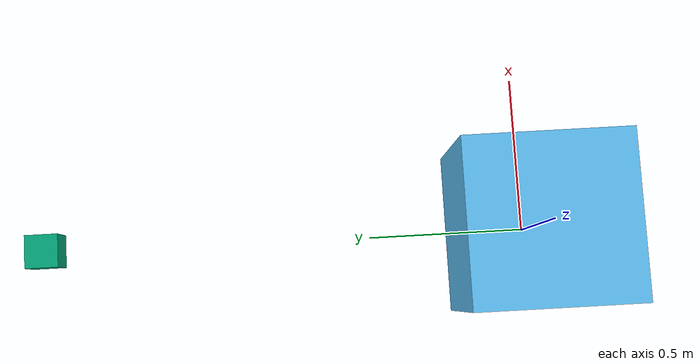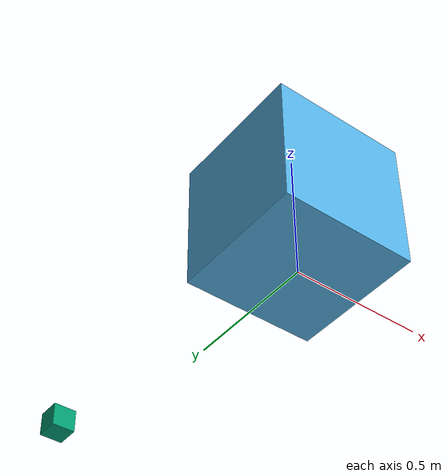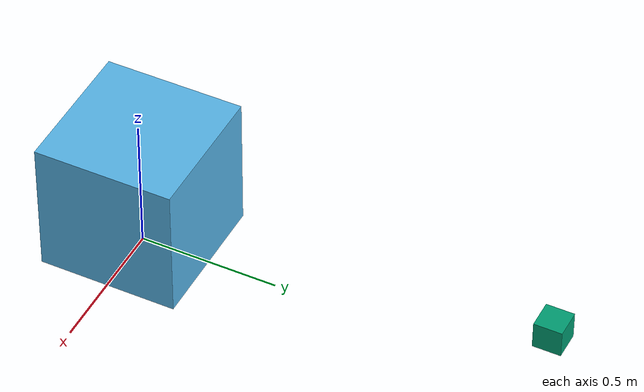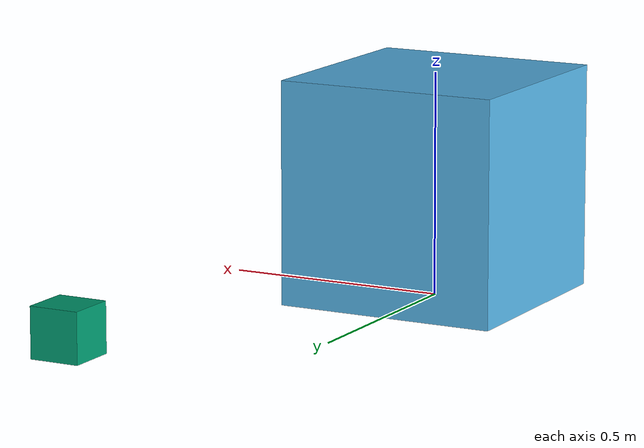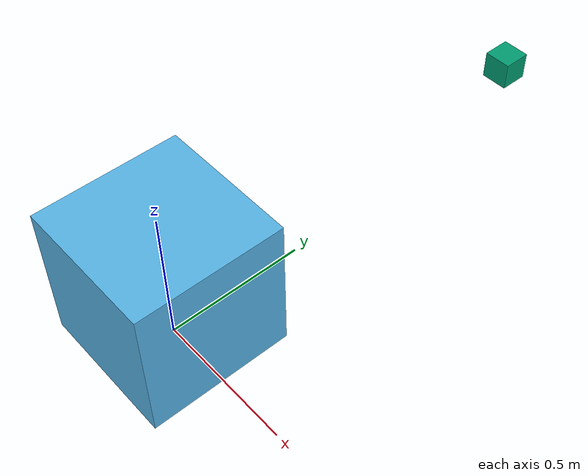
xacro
<?xml version="1.0"?>
<robot name="robotino" xmlns:xacro="http://www.ros.org/wiki/xacro">

  <xacro:property name="PI" value="3.1415926535897931"/>
  <xacro:property name="width" value="0.5" /> <!-- Square dimensions (widthxwidth) of beams -->
  <xacro:property name="height" value="0.5" /> <!-- Link 1 -->
  <xacro:property name="width_2" value="0.1" /> <!-- Square dimensions (widthxwidth) of beams -->
  <xacro:property name="height_2" value="0.1" /> <!-- Link 1 -->
  <xacro:property name="axel_offset" value="0.05" /> <!-- Space btw top of beam and the each joint -->

  <link name="world"/>

  <joint name="fixed" type="fixed">
    <parent link="world"/>
    <child link="base_link"/>
  </joint>

  <link name="base_link">
    <collision>
      <origin xyz="0 0 ${height/2}" rpy="0 0 0"/>
      <geometry>
        <box size="${width} ${width} ${height}"/>
      </geometry>
    </collision>

    <visual>
      <origin xyz="0 0 ${height/2}" rpy="0 0 0"/>
      <geometry>
        <box size="${width} ${width} ${height}"/>
      </geometry>
    </visual>

    <inertial>
      <origin xyz="0 0 ${height/2}" rpy="0 0 0"/>
      <mass value="1"/>
      <inertia
      ixx="1.0" ixy="0.0" ixz="0.0"
      iyy="1.0" iyz="0.0"
      izz="1.0"/>
    </inertial>
  </link>

  <joint name="joint" type="prismatic">
    <parent link="base_link"/>
    <child link="cube_link"/>
    <origin xyz="0 ${width} ${height/2}" rpy="0 0 0"/>
    <axis xyz="0 1 0"/>
    <limit effort="300" velocity="10.0" lower="-2" upper="2" />
  </joint>

  <link name="cube_link">
    <collision>
      <origin xyz="0 ${2*width} 0" rpy="0 0 0"/>
      <geometry>
        <box size="${width_2} ${width_2} ${height_2}"/>
      </geometry>
    </collision>

    <visual>
      <origin xyz="0 ${2*width} 0" rpy="0 0 0"/>
      <geometry>
        <box size="${width_2} ${width_2} ${height_2}"/>
      </geometry>
    </visual>

    <inertial>
      <origin xyz="0 ${2*width} 0" rpy="0 0 0"/>
      <mass value="1"/>
      <inertia
      ixx="1.0" ixy="0.0" ixz="0.0"
      iyy="1.0" iyz="0.0"
      izz="1.0"/>
    </inertial>
  </link>

  <gazebo reference="cube_link">
    <kp>1000000.0</kp>
    <kd>100.0</kd>
    <mu1>0</mu1>
    <mu2>0</mu2>
    <fdir1>0 0 0</fdir1>
  </gazebo>

  <gazebo>
    <plugin name="robotino_plugin" filename="librobotino_plugin.so"/>
  </gazebo>

</robot>
